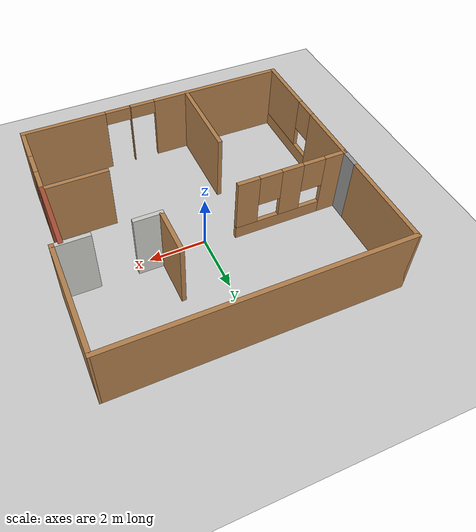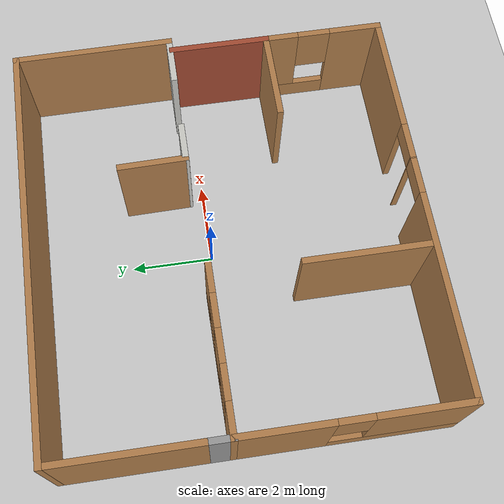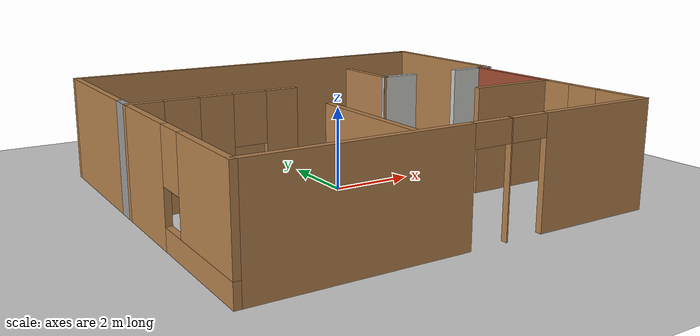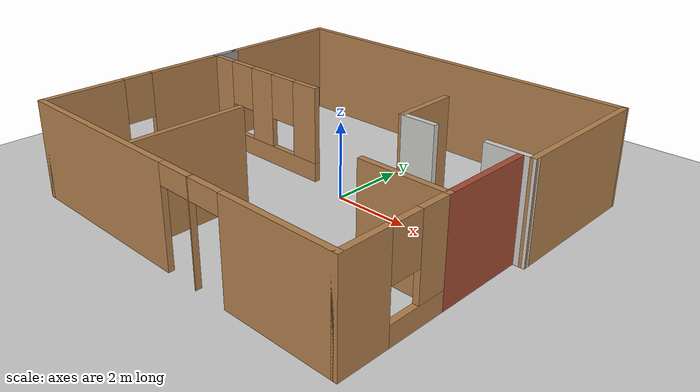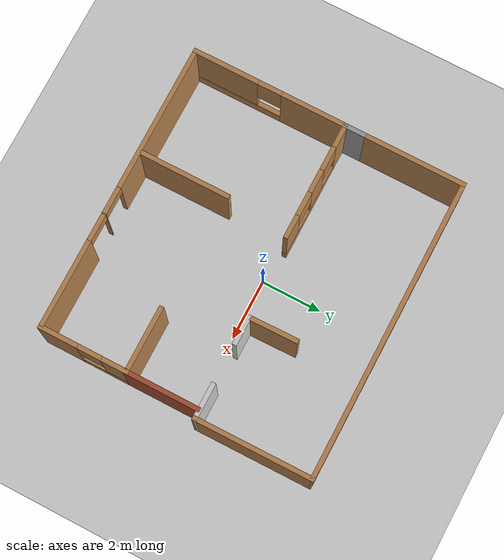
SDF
<sdf version="1.7">
 <world name="default">
  <light name="sun" type="directional">
   <pose>0 0 10 0 -0 0</pose>
   <diffuse>0.8 0.8 0.8 1</diffuse>
   <specular>0.2 0.2 0.2 1</specular>
   <attenuation>
    <range>1000</range>
    <constant>0.9</constant>
    <linear>0.01</linear>
    <quadratic>0.001</quadratic>
   </attenuation>
   <direction>-0.5 0.1 -0.9</direction>
   <spot><inner_angle>0</inner_angle><outer_angle>0</outer_angle><falloff>0</falloff></spot>
  </light>
  <model name="ground_plane">
   <static>1</static>
   <link name="link">
    <collision name="collision">
     <geometry><plane><normal>0 0 1</normal><size>100 100</size></plane></geometry>
     <surface><friction><ode><mu>100</mu><mu2>50</mu2></ode></friction></surface>
    </collision>
    <visual name="visual">
     <cast_shadows>0</cast_shadows>
     <geometry><plane><normal>0 0 1</normal><size>100 100</size></plane></geometry>
     <material>
      <script><uri>file://media/materials/scripts/gazebo.material</uri><name>Gazebo/Grey</name></script>
     </material>
    </visual>
   </link>
  </model>
  <gravity>0 0 -9.8</gravity>
  <magnetic_field>6e-06 2.3e-05 -4.2e-05</magnetic_field>
  <atmosphere type="adiabatic"/>
  <physics type="ode">
   <max_step_size>0.001</max_step_size>
   <real_time_factor>1</real_time_factor>
   <real_time_update_rate>1000</real_time_update_rate>
  </physics>
  <scene><ambient>0.4 0.4 0.4 1</ambient><background>0.7 0.7 0.7 1</background><shadows>1</shadows></scene>
  <audio><device>default</device></audio>
  <spherical_coordinates>
   <surface_model>EARTH_WGS84</surface_model>
   <latitude_deg>0</latitude_deg>
   <longitude_deg>0</longitude_deg>
   <elevation>0</elevation>
   <heading_deg>0</heading_deg>
  </spherical_coordinates>
  <model name="mini_bot_office.world">
   <pose>0 0 0.04682 0 -0 0</pose>
   <link name="Wall_0">
    <collision name="Wall_0_Collision">
     <geometry><box><size>3.5 0.15 2.5</size></box></geometry>
     <pose>0 0 1.25 0 -0 0</pose>
    </collision>
    <visual name="Wall_0_Visual">
     <pose>0 0 1.25 0 -0 0</pose>
     <geometry><box><size>3.5 0.15 2.5</size></box></geometry>
     <material>
      <script><uri>file://media/materials/scripts/gazebo.material</uri><name>Gazebo/Wood</name></script>
      <ambient>1 1 1 1</ambient>
     </material>
     <meta><layer>0</layer></meta>
    </visual>
    <pose>-4.93856 2.4775 0 0 -0 -1.5708</pose>
   </link>
   <link name="Wall_11">
    <pose>-4.93856 -2.3475 0 0 -0 -1.5708</pose>
    <visual name="Wall_11_Visual_0">
     <pose>-1.5136 0 1.25 0 -0 0</pose>
     <geometry><box><size>2.2228 0.15 2.5</size></box></geometry>
     <material>
      <script><uri>file://media/materials/scripts/gazebo.material</uri><name>Gazebo/Wood</name></script>
      <ambient>1 1 1 1</ambient>
     </material>
     <meta><layer>0</layer></meta>
    </visual>
    <collision name="Wall_11_Collision_0">
     <geometry><box><size>2.2228 0.15 2.5</size></box></geometry>
     <pose>-1.5136 0 1.25 0 -0 0</pose>
    </collision>
    <visual name="Wall_11_Visual_1">
     <pose>1.1114 0 0.25 0 -0 0</pose>
     <geometry><box><size>3.0272 0.15 0.5</size></box></geometry>
     <material>
      <script><uri>file://media/materials/scripts/gazebo.material</uri><name>Gazebo/Wood</name></script>
      <ambient>1 1 1 1</ambient>
     </material>
     <meta><layer>0</layer></meta>
    </visual>
    <collision name="Wall_11_Collision_1">
     <geometry><box><size>3.0272 0.15 0.5</size></box></geometry>
     <pose>1.1114 0 0.25 0 -0 0</pose>
    </collision>
    <visual name="Wall_11_Visual_2">
     <pose>1.5114 0 1.5 0 -0 0</pose>
     <geometry><box><size>2.2272 0.15 2</size></box></geometry>
     <material>
      <script><uri>file://media/materials/scripts/gazebo.material</uri><name>Gazebo/Wood</name></script>
      <ambient>1 1 1 1</ambient>
     </material>
     <meta><layer>0</layer></meta>
    </visual>
    <collision name="Wall_11_Collision_2">
     <geometry><box><size>2.2272 0.15 2</size></box></geometry>
     <pose>1.5114 0 1.5 0 -0 0</pose>
    </collision>
    <visual name="Wall_11_Visual_3">
     <pose>-0.0022 0 1.9 0 -0 0</pose>
     <geometry><box><size>0.8 0.15 1.2</size></box></geometry>
     <material>
      <script><uri>file://media/materials/scripts/gazebo.material</uri><name>Gazebo/Wood</name></script>
      <ambient>1 1 1 1</ambient>
     </material>
     <meta><layer>0</layer></meta>
    </visual>
    <collision name="Wall_11_Collision_3">
     <geometry><box><size>0.8 0.15 1.2</size></box></geometry>
     <pose>-0.0022 0 1.9 0 -0 0</pose>
    </collision>
   </link>
   <link name="Wall_12">
    <pose>-0.138561 -4.8975 0 0 -0 0</pose>
    <visual name="Wall_12_Visual_0">
     <pose>-2.4142 0 1.25 0 -0 0</pose>
     <geometry><box><size>4.9216 0.15 2.5</size></box></geometry>
     <material>
      <script><uri>file://media/materials/scripts/gazebo.material</uri><name>Gazebo/Wood</name></script>
      <ambient>1 1 1 1</ambient>
     </material>
     <meta><layer>0</layer></meta>
    </visual>
    <collision name="Wall_12_Collision_0">
     <geometry><box><size>4.9216 0.15 2.5</size></box></geometry>
     <pose>-2.4142 0 1.25 0 -0 0</pose>
    </collision>
    <visual name="Wall_12_Visual_1">
     <pose>0.961836 0 1.25 0 -0 0</pose>
     <geometry><box><size>0.030478 0.15 2.5</size></box></geometry>
     <material>
      <script><uri>file://media/materials/scripts/gazebo.material</uri><name>Gazebo/Wood</name></script>
      <ambient>1 1 1 1</ambient>
     </material>
     <meta><layer>0</layer></meta>
    </visual>
    <collision name="Wall_12_Collision_1">
     <geometry><box><size>0.030478 0.15 2.5</size></box></geometry>
     <pose>0.961836 0 1.25 0 -0 0</pose>
    </collision>
    <visual name="Wall_12_Visual_2">
     <pose>3.37604 0 1.25 0 -0 0</pose>
     <geometry><box><size>2.99792 0.15 2.5</size></box></geometry>
     <material>
      <script><uri>file://media/materials/scripts/gazebo.material</uri><name>Gazebo/Wood</name></script>
      <ambient>1 1 1 1</ambient>
     </material>
     <meta><layer>0</layer></meta>
    </visual>
    <collision name="Wall_12_Collision_2">
     <geometry><box><size>2.99792 0.15 2.5</size></box></geometry>
     <pose>3.37604 0 1.25 0 -0 0</pose>
    </collision>
    <visual name="Wall_12_Visual_3">
     <pose>0.496597 0 2.25 0 -0 0</pose>
     <geometry><box><size>0.9 0.15 0.5</size></box></geometry>
     <material>
      <script><uri>file://media/materials/scripts/gazebo.material</uri><name>Gazebo/Wood</name></script>
      <ambient>1 1 1 1</ambient>
     </material>
     <meta><layer>0</layer></meta>
    </visual>
    <collision name="Wall_12_Collision_3">
     <geometry><box><size>0.9 0.15 0.5</size></box></geometry>
     <pose>0.496597 0 2.25 0 -0 0</pose>
    </collision>
    <visual name="Wall_12_Visual_4">
     <pose>1.42708 0 2.25 0 -0 0</pose>
     <geometry><box><size>0.9 0.15 0.5</size></box></geometry>
     <material>
      <script><uri>file://media/materials/scripts/gazebo.material</uri><name>Gazebo/Wood</name></script>
      <ambient>1 1 1 1</ambient>
     </material>
     <meta><layer>0</layer></meta>
    </visual>
    <collision name="Wall_12_Collision_4">
     <geometry><box><size>0.9 0.15 0.5</size></box></geometry>
     <pose>1.42708 0 2.25 0 -0 0</pose>
    </collision>
   </link>
   <link name="Wall_13">
    <pose>4.66144 -3.4725 0 0 -0 1.5708</pose>
    <visual name="Wall_13_Visual_0">
     <pose>-0.845 0 1.25 0 -0 0</pose>
     <geometry><box><size>1.31 0.15 2.5</size></box></geometry>
     <material>
      <script><uri>file://media/materials/scripts/gazebo.material</uri><name>Gazebo/Wood</name></script>
      <ambient>1 1 1 1</ambient>
     </material>
     <meta><layer>0</layer></meta>
    </visual>
    <collision name="Wall_13_Collision_0">
     <geometry><box><size>1.31 0.15 2.5</size></box></geometry>
     <pose>-0.845 0 1.25 0 -0 0</pose>
    </collision>
    <visual name="Wall_13_Visual_1">
     <pose>0.655 0 0.25 0 -0 0</pose>
     <geometry><box><size>1.69 0.15 0.5</size></box></geometry>
     <material>
      <script><uri>file://media/materials/scripts/gazebo.material</uri><name>Gazebo/Wood</name></script>
      <ambient>1 1 1 1</ambient>
     </material>
     <meta><layer>0</layer></meta>
    </visual>
    <collision name="Wall_13_Collision_1">
     <geometry><box><size>1.69 0.15 0.5</size></box></geometry>
     <pose>0.655 0 0.25 0 -0 0</pose>
    </collision>
    <visual name="Wall_13_Visual_2">
     <pose>1.055 0 1.5 0 -0 0</pose>
     <geometry><box><size>0.889999 0.15 2</size></box></geometry>
     <material>
      <script><uri>file://media/materials/scripts/gazebo.material</uri><name>Gazebo/Wood</name></script>
      <ambient>1 1 1 1</ambient>
     </material>
     <meta><layer>0</layer></meta>
    </visual>
    <collision name="Wall_13_Collision_2">
     <geometry><box><size>0.889999 0.15 2</size></box></geometry>
     <pose>1.055 0 1.5 0 -0 0</pose>
    </collision>
    <visual name="Wall_13_Visual_3">
     <pose>0.210001 0 1.9 0 -0 0</pose>
     <geometry><box><size>0.8 0.15 1.2</size></box></geometry>
     <material>
      <script><uri>file://media/materials/scripts/gazebo.material</uri><name>Gazebo/Wood</name></script>
      <ambient>1 1 1 1</ambient>
     </material>
     <meta><layer>0</layer></meta>
    </visual>
    <collision name="Wall_13_Collision_3">
     <geometry><box><size>0.8 0.15 1.2</size></box></geometry>
     <pose>0.210001 0 1.9 0 -0 0</pose>
    </collision>
   </link>
   <link name="Wall_14">
    <collision name="Wall_14_Collision">
     <geometry><box><size>2.25 0.15 2.5</size></box></geometry>
     <pose>0 0 1.25 0 -0 0</pose>
    </collision>
    <visual name="Wall_14_Visual">
     <pose>0 0 1.25 0 -0 0</pose>
     <geometry><box><size>2.25 0.15 2.5</size></box></geometry>
     <material>
      <script><uri>file://media/materials/scripts/gazebo.material</uri><name>Gazebo/Wood</name></script>
      <ambient>1 1 1 1</ambient>
     </material>
     <meta><layer>0</layer></meta>
    </visual>
    <pose>3.61144 -2.0475 0 0 -0 3.14159</pose>
   </link>
   <link name="Wall_16">
    <collision name="Wall_16_Collision">
     <geometry><box><size>3 0.15 2.5</size></box></geometry>
     <pose>0 0 1.25 0 -0 0</pose>
    </collision>
    <visual name="Wall_16_Visual">
     <pose>0 0 1.25 0 -0 0</pose>
     <geometry><box><size>3 0.15 2.5</size></box></geometry>
     <material>
      <script><uri>file://media/materials/scripts/gazebo.material</uri><name>Gazebo/Wood</name></script>
      <ambient>1 1 1 1</ambient>
     </material>
     <meta><layer>0</layer></meta>
    </visual>
    <pose>-1.35598 -3.34994 0 0 -0 -1.5708</pose>
   </link>
   <link name="Wall_18">
    <collision name="Wall_18_Collision">
     <geometry><box><size>2.5 0.15 2.5</size></box></geometry>
     <pose>0 0 1.25 0 -0 0</pose>
    </collision>
    <visual name="Wall_18_Visual">
     <pose>0 0 1.25 0 -0 0</pose>
     <geometry><box><size>2.5 0.15 2.5</size></box></geometry>
     <material>
      <script><uri>file://media/materials/scripts/gazebo.material</uri><name>Gazebo/Bricks</name></script>
      <ambient>1 1 1 1</ambient>
     </material>
     <meta><layer>0</layer></meta>
    </visual>
    <pose>4.66144 -0.872499 0 0 -0 1.5708</pose>
   </link>
   <link name="Wall_2">
    <collision name="Wall_2_Collision">
     <geometry><box><size>0.75 0.15 2.5</size></box></geometry>
     <pose>0 0 1.25 0 -0 0</pose>
    </collision>
    <visual name="Wall_2_Visual">
     <pose>0 0 1.25 0 -0 0</pose>
     <geometry><box><size>0.75 0.15 2.5</size></box></geometry>
     <material>
      <script><uri>file://media/materials/scripts/gazebo.material</uri><name>Gazebo/Grey</name></script>
      <ambient>1 1 1 1</ambient>
     </material>
     <meta><layer>0</layer></meta>
    </visual>
    <pose>-4.93856 0.502501 0 0 -0 -1.5708</pose>
   </link>
   <link name="Wall_20">
    <collision name="Wall_20_Collision">
     <geometry><box><size>1 0.15 2.5</size></box></geometry>
     <pose>0 0 1.25 0 -0 0</pose>
    </collision>
    <visual name="Wall_20_Visual">
     <pose>0 0 1.25 0 -0 0</pose>
     <geometry><box><size>1 0.15 2.5</size></box></geometry>
     <material>
      <script><uri>file://media/materials/scripts/gazebo.material</uri><name>Gazebo/CeilingTiled</name></script>
      <ambient>1 1 1 1</ambient>
     </material>
     <meta><layer>0</layer></meta>
    </visual>
    <pose>2.01304 0.3557 0 0 -0 0</pose>
   </link>
   <link name="Wall_22">
    <collision name="Wall_22_Collision">
     <geometry><box><size>1.25 0.15 2.5</size></box></geometry>
     <pose>0 0 1.25 0 -0 0</pose>
    </collision>
    <visual name="Wall_22_Visual">
     <pose>0 0 1.25 0 -0 0</pose>
     <geometry><box><size>1.25 0.15 2.5</size></box></geometry>
     <material>
      <script><uri>file://media/materials/scripts/gazebo.material</uri><name>Gazebo/CeilingTiled</name></script>
      <ambient>1 1 1 1</ambient>
     </material>
     <meta><layer>0</layer></meta>
    </visual>
    <pose>4.38804 0.3557 0 0 -0 3.14159</pose>
   </link>
   <link name="Wall_4">
    <pose>-3.01356 0.2025 0 0 -0 0</pose>
    <visual name="Wall_4_Visual_0">
     <pose>-1.58452 0 1.25 0 -0 0</pose>
     <geometry><box><size>0.830969 0.15 2.5</size></box></geometry>
     <material>
      <script><uri>file://media/materials/scripts/gazebo.material</uri><name>Gazebo/Wood</name></script>
      <ambient>1 1 1 1</ambient>
     </material>
     <meta><layer>0</layer></meta>
    </visual>
    <collision name="Wall_4_Collision_0">
     <geometry><box><size>0.830969 0.15 2.5</size></box></geometry>
     <pose>-1.58452 0 1.25 0 -0 0</pose>
    </collision>
    <visual name="Wall_4_Visual_1">
     <pose>0.415484 0 0.25 0 -0 0</pose>
     <geometry><box><size>3.16903 0.15 0.5</size></box></geometry>
     <material>
      <script><uri>file://media/materials/scripts/gazebo.material</uri><name>Gazebo/Wood</name></script>
      <ambient>1 1 1 1</ambient>
     </material>
     <meta><layer>0</layer></meta>
    </visual>
    <collision name="Wall_4_Collision_1">
     <geometry><box><size>3.16903 0.15 0.5</size></box></geometry>
     <pose>0.415484 0 0.25 0 -0 0</pose>
    </collision>
    <visual name="Wall_4_Visual_2">
     <pose>0.021875 0 1.5 0 -0 0</pose>
     <geometry><box><size>0.781813 0.15 2</size></box></geometry>
     <material>
      <script><uri>file://media/materials/scripts/gazebo.material</uri><name>Gazebo/Wood</name></script>
      <ambient>1 1 1 1</ambient>
     </material>
     <meta><layer>0</layer></meta>
    </visual>
    <collision name="Wall_4_Collision_2">
     <geometry><box><size>0.781813 0.15 2</size></box></geometry>
     <pose>0.021875 0 1.5 0 -0 0</pose>
    </collision>
    <visual name="Wall_4_Visual_3">
     <pose>1.60639 0 1.5 0 -0 0</pose>
     <geometry><box><size>0.787218 0.15 2</size></box></geometry>
     <material>
      <script><uri>file://media/materials/scripts/gazebo.material</uri><name>Gazebo/Wood</name></script>
      <ambient>1 1 1 1</ambient>
     </material>
     <meta><layer>0</layer></meta>
    </visual>
    <collision name="Wall_4_Collision_3">
     <geometry><box><size>0.787218 0.15 2</size></box></geometry>
     <pose>1.60639 0 1.5 0 -0 0</pose>
    </collision>
    <visual name="Wall_4_Visual_4">
     <pose>-0.769031 0 1.9 0 -0 0</pose>
     <geometry><box><size>0.8 0.15 1.2</size></box></geometry>
     <material>
      <script><uri>file://media/materials/scripts/gazebo.material</uri><name>Gazebo/Wood</name></script>
      <ambient>1 1 1 1</ambient>
     </material>
     <meta><layer>0</layer></meta>
    </visual>
    <collision name="Wall_4_Collision_4">
     <geometry><box><size>0.8 0.15 1.2</size></box></geometry>
     <pose>-0.769031 0 1.9 0 -0 0</pose>
    </collision>
    <visual name="Wall_4_Visual_5">
     <pose>0.812782 0 1.9 0 -0 0</pose>
     <geometry><box><size>0.8 0.15 1.2</size></box></geometry>
     <material>
      <script><uri>file://media/materials/scripts/gazebo.material</uri><name>Gazebo/Wood</name></script>
      <ambient>1 1 1 1</ambient>
     </material>
     <meta><layer>0</layer></meta>
    </visual>
    <collision name="Wall_4_Collision_5">
     <geometry><box><size>0.8 0.15 1.2</size></box></geometry>
     <pose>0.812782 0 1.9 0 -0 0</pose>
    </collision>
   </link>
   <link name="Wall_6">
    <collision name="Wall_6_Collision">
     <geometry><box><size>10 0.15 2.5</size></box></geometry>
     <pose>0 0 1.25 0 -0 0</pose>
    </collision>
    <visual name="Wall_6_Visual">
     <pose>0 0 1.25 0 -0 0</pose>
     <geometry><box><size>10 0.15 2.5</size></box></geometry>
     <material>
      <script><uri>file://media/materials/scripts/gazebo.material</uri><name>Gazebo/Wood</name></script>
      <ambient>1 1 1 1</ambient>
     </material>
     <meta><layer>0</layer></meta>
    </visual>
    <pose>-0.013561 4.1525 0 0 -0 0</pose>
   </link>
   <link name="Wall_7">
    <collision name="Wall_7_Collision">
     <geometry><box><size>3.94689 0.15 2.5</size></box></geometry>
     <pose>0 0 1.25 0 -0 0</pose>
    </collision>
    <visual name="Wall_7_Visual">
     <pose>0 0 1.25 0 -0 0</pose>
     <geometry><box><size>3.94689 0.15 2.5</size></box></geometry>
     <material>
      <script><uri>file://media/materials/scripts/gazebo.material</uri><name>Gazebo/Wood</name></script>
      <ambient>1 1 1 1</ambient>
     </material>
     <meta><layer>0</layer></meta>
    </visual>
    <pose>4.92474 2.2541 0 0 -0 -1.56379</pose>
   </link>
   <link name="Wall_9">
    <collision name="Wall_9_Collision">
     <geometry><box><size>1.69703 0.15 2.5</size></box></geometry>
     <pose>0 0 1.25 0 -0 0</pose>
    </collision>
    <visual name="Wall_9_Visual">
     <pose>0 0 1.25 0 -0 0</pose>
     <geometry><box><size>1.69703 0.15 2.5</size></box></geometry>
     <material>
      <script><uri>file://media/materials/scripts/gazebo.material</uri><name>Gazebo/Wood</name></script>
      <ambient>1 1 1 1</ambient>
     </material>
     <meta><layer>0</layer></meta>
    </visual>
    <pose>1.57474 1.1291 0 0 -0 1.58799</pose>
   </link>
   <static>1</static>
  </model>
 </world>
</sdf>
